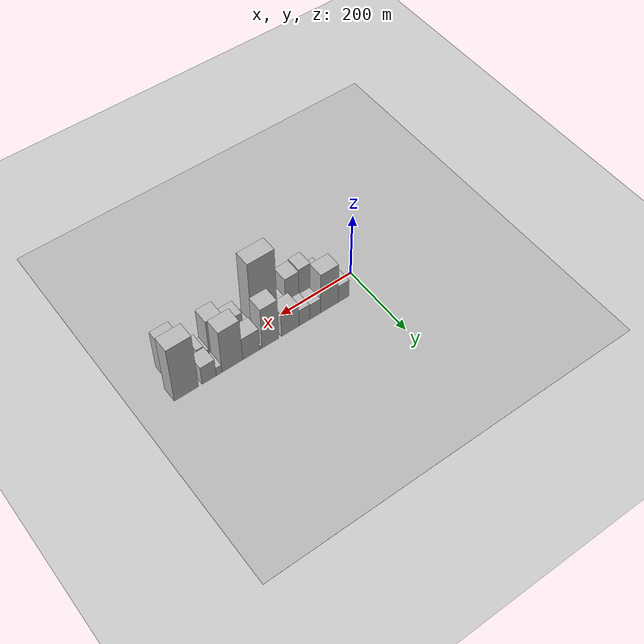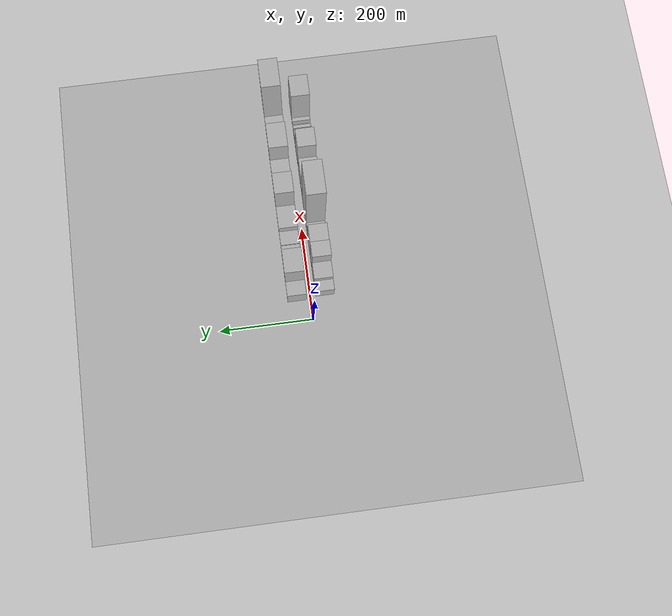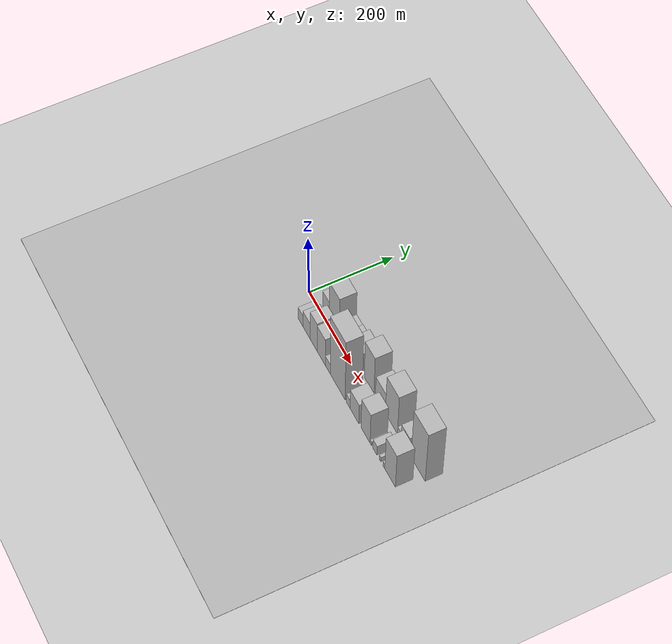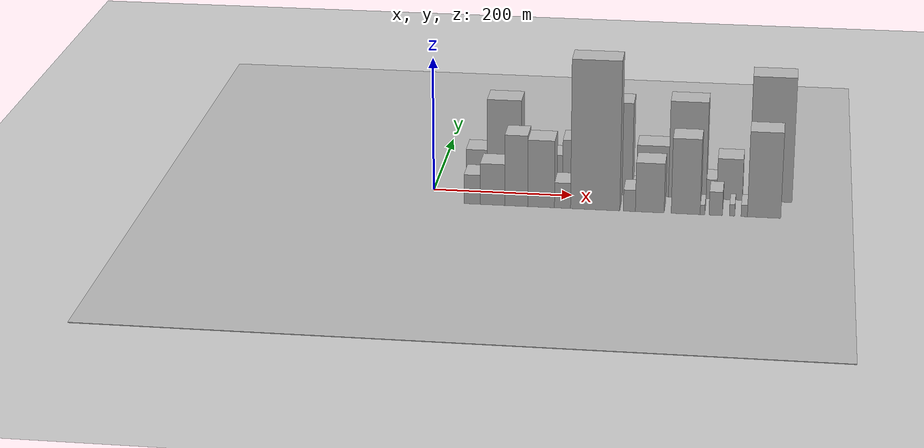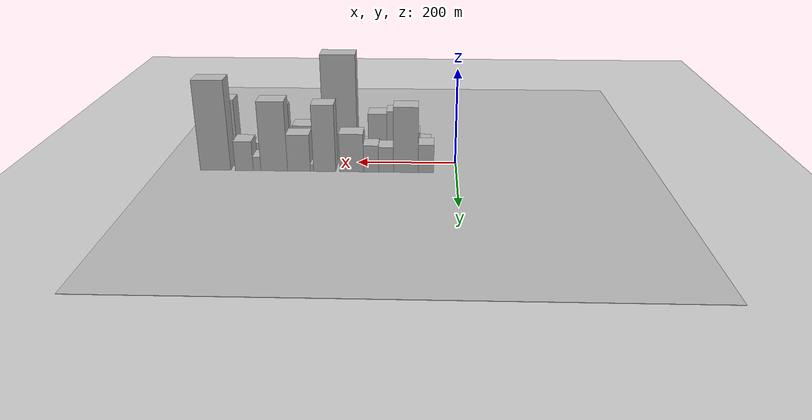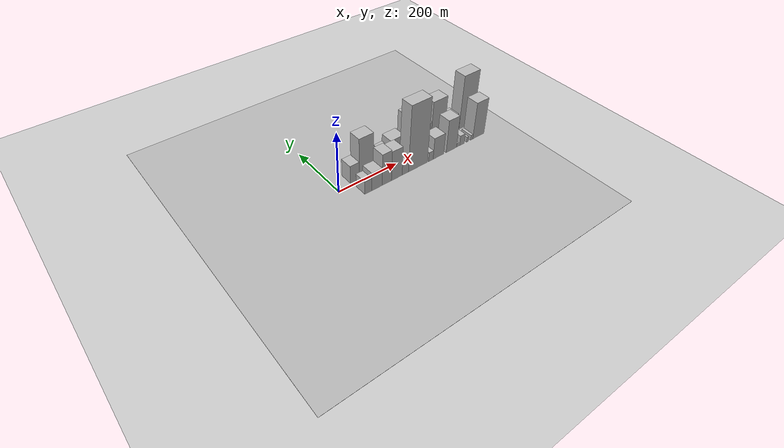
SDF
<?xml version="1.0" encoding="utf-8"?>

<sdf version="1.6">

   <world name="default">

      <gui fullscreen="0">

         <camera name="user_camera">

            <pose>-15 0 4.57585 0 0 0</pose>

            <view_controller>orbit</view_controller>

         </camera>

      </gui>

      <scene>

         <sky>

           <clouds>

             <speed>12</speed>

           </clouds>

         </sky>

         <ambient>0.4 0.4 0.4 1</ambient>

         <background>0.7 0.7 0.7 1</background>

         <shadows>1</shadows>

      </scene>

      <gravity>0 0 -9.8066</gravity>

      <magnetic_field>6e-06 2.3e-05 -4.2e-05</magnetic_field>

      <physics default="0" name="default_physics" type="ode">

         <ode>

            <solver>

               <type>quick</type>

               <iters>10</iters>

               <sor>1.0</sor>

               <use_dynamic_moi_rescaling>0</use_dynamic_moi_rescaling>

            </solver>

            <constraints>

               <cfm>0</cfm>

               <erp>0.2</erp>

               <contact_max_correcting_vel>100</contact_max_correcting_vel>

               <contact_surface_layer>0.001</contact_surface_layer>

            </constraints>

         </ode>

         <max_step_size>0.004</max_step_size>

         <real_time_factor>1</real_time_factor>

         <real_time_update_rate>250</real_time_update_rate>

      </physics>

      <light name="sun" type="directional">

         <cast_shadows>1</cast_shadows>

         <pose>0 0 10 0 0 0</pose>

         <diffuse>0.8 0.8 0.8 1</diffuse>

         <specular>0.2 0.2 0.2 1</specular>

         <attenuation>

            <range>1000</range>

            <constant>0.9</constant>

            <linear>0.01</linear>

            <quadratic>0.001</quadratic>

         </attenuation>

         <direction>-0.5 0.1 -0.9</direction>

      </light>

      <include>

         <name>ground_plane_1</name>

         <uri>model://HANNAS_ground_plane</uri>

         <pose>0 0 0  0 0 0</pose>

      </include>

      <include>

         <name>ground_plane_2</name>

         <uri>model://HANNAS_ground_plane</uri>

         <pose>100 0 0  0 0 0</pose>

      </include>

      <model name="building_1">

         <static>1</static>

         <pose frame="">60.4509 30.0000 0 0.000000 0.000000 1.570796</pose>

         <link name="link">

            <pose frame="">0 0 30.00 0 0 0</pose>

            <collision name="collision">

               <geometry>

                  <box>

                     <size>40.0000 30.9018 60.0000</size>

                  </box>

               </geometry>

               <max_contacts>10</max_contacts>

               <surface>

                  <contact>

                     <ode/>

                  </contact>

                  <bounce/>

                  <friction>

                     <torsional>

                        <ode/>

                     </torsional>

                     <ode/>

                  </friction>

               </surface>

            </collision>

            <visual name="visual">

               <cast_shadows>0</cast_shadows>

               <geometry>

                  <box>

                     <size>40.0000 30.9018 60.0000</size>

                  </box>

               </geometry>

               <material>

                  <script>

                     <uri>model://HANNAS_wall/materials/scripts</uri>

                     <uri>model://HANNAS_wall/materials/textures</uri>

                     <name>vrc/HANNAS_wall</name>

                  </script>

               </material>

            </visual>

            <self_collide>0</self_collide>

            <enable_wind>0</enable_wind>

            <kinematic>0</kinematic>

         </link>

      </model>

      <model name="building_2">

         <static>1</static>

         <pose frame="">100.6354 30.0000 0 0.000000 0.000000 1.570796</pose>

         <link name="link">

            <pose frame="">0 0 69.00 0 0 0</pose>

            <collision name="collision">

               <geometry>

                  <box>

                     <size>40.0000 49.4672 138.0000</size>

                  </box>

               </geometry>

               <max_contacts>10</max_contacts>

               <surface>

                  <contact>

                     <ode/>

                  </contact>

                  <bounce/>

                  <friction>

                     <torsional>

                        <ode/>

                     </torsional>

                     <ode/>

                  </friction>

               </surface>

            </collision>

            <visual name="visual">

               <cast_shadows>0</cast_shadows>

               <geometry>

                  <box>

                     <size>40.0000 49.4672 138.0000</size>

                  </box>

               </geometry>

               <material>

                  <script>

                     <uri>model://HANNAS_wall/materials/scripts</uri>

                     <uri>model://HANNAS_wall/materials/textures</uri>

                     <name>vrc/HANNAS_wall</name>

                  </script>

               </material>

            </visual>

            <self_collide>0</self_collide>

            <enable_wind>0</enable_wind>

            <kinematic>0</kinematic>

         </link>

      </model>

      <model name="building_3">

         <static>1</static>

         <pose frame="">140.2721 30.0000 0 0.000000 0.000000 1.570796</pose>

         <link name="link">

            <pose frame="">0 0 27.00 0 0 0</pose>

            <collision name="collision">

               <geometry>

                  <box>

                     <size>40.0000 29.8062 54.0000</size>

                  </box>

               </geometry>

               <max_contacts>10</max_contacts>

               <surface>

                  <contact>

                     <ode/>

                  </contact>

                  <bounce/>

                  <friction>

                     <torsional>

                        <ode/>

                     </torsional>

                     <ode/>

                  </friction>

               </surface>

            </collision>

            <visual name="visual">

               <cast_shadows>0</cast_shadows>

               <geometry>

                  <box>

                     <size>40.0000 29.8062 54.0000</size>

                  </box>

               </geometry>

               <material>

                  <script>

                     <uri>model://HANNAS_wall/materials/scripts</uri>

                     <uri>model://HANNAS_wall/materials/textures</uri>

                     <name>vrc/HANNAS_wall</name>

                  </script>

               </material>

            </visual>

            <self_collide>0</self_collide>

            <enable_wind>0</enable_wind>

            <kinematic>0</kinematic>

         </link>

      </model>

      <model name="building_4">

         <static>1</static>

         <pose frame="">170.2187 30.0000 0 0.000000 0.000000 1.570796</pose>

         <link name="link">

            <pose frame="">0 0 28.50 0 0 0</pose>

            <collision name="collision">

               <geometry>

                  <box>

                     <size>40.0000 30.0870 57.0000</size>

                  </box>

               </geometry>

               <max_contacts>10</max_contacts>

               <surface>

                  <contact>

                     <ode/>

                  </contact>

                  <bounce/>

                  <friction>

                     <torsional>

                        <ode/>

                     </torsional>

                     <ode/>

                  </friction>

               </surface>

            </collision>

            <visual name="visual">

               <cast_shadows>0</cast_shadows>

               <geometry>

                  <box>

                     <size>40.0000 30.0870 57.0000</size>

                  </box>

               </geometry>

               <material>

                  <script>

                     <uri>model://HANNAS_wall/materials/scripts</uri>

                     <uri>model://HANNAS_wall/materials/textures</uri>

                     <name>vrc/HANNAS_wall</name>

                  </script>

               </material>

            </visual>

            <self_collide>0</self_collide>

            <enable_wind>0</enable_wind>

            <kinematic>0</kinematic>

         </link>

      </model>

      <model name="building_5">

         <static>1</static>

         <pose frame="">209.2248 30.0000 0 0.000000 0.000000 1.570796</pose>

         <link name="link">

            <pose frame="">0 0 40.50 0 0 0</pose>

            <collision name="collision">

               <geometry>

                  <box>

                     <size>40.0000 47.9252 81.0000</size>

                  </box>

               </geometry>

               <max_contacts>10</max_contacts>

               <surface>

                  <contact>

                     <ode/>

                  </contact>

                  <bounce/>

                  <friction>

                     <torsional>

                        <ode/>

                     </torsional>

                     <ode/>

                  </friction>

               </surface>

            </collision>

            <visual name="visual">

               <cast_shadows>0</cast_shadows>

               <geometry>

                  <box>

                     <size>40.0000 47.9252 81.0000</size>

                  </box>

               </geometry>

               <material>

                  <script>

                     <uri>model://HANNAS_wall/materials/scripts</uri>

                     <uri>model://HANNAS_wall/materials/textures</uri>

                     <name>vrc/HANNAS_wall</name>

                  </script>

               </material>

            </visual>

            <self_collide>0</self_collide>

            <enable_wind>0</enable_wind>

            <kinematic>0</kinematic>

         </link>

      </model>

      <model name="building_6">

         <static>1</static>

         <pose frame="">263.5453 30.0000 0 0.000000 0.000000 1.570796</pose>

         <link name="link">

            <pose frame="">0 0 70.50 0 0 0</pose>

            <collision name="collision">

               <geometry>

                  <box>

                     <size>40.0000 44.7156 141.0000</size>

                  </box>

               </geometry>

               <max_contacts>10</max_contacts>

               <surface>

                  <contact>

                     <ode/>

                  </contact>

                  <bounce/>

                  <friction>

                     <torsional>

                        <ode/>

                     </torsional>

                     <ode/>

                  </friction>

               </surface>

            </collision>

            <visual name="visual">

               <cast_shadows>0</cast_shadows>

               <geometry>

                  <box>

                     <size>40.0000 44.7156 141.0000</size>

                  </box>

               </geometry>

               <material>

                  <script>

                     <uri>model://HANNAS_wall/materials/scripts</uri>

                     <uri>model://HANNAS_wall/materials/textures</uri>

                     <name>vrc/HANNAS_wall</name>

                  </script>

               </material>

            </visual>

            <self_collide>0</self_collide>

            <enable_wind>0</enable_wind>

            <kinematic>0</kinematic>

         </link>

      </model>

      <model name="building_7">

         <static>1</static>

         <pose frame="">289.0126 30.0000 0 0.000000 0.000000 1.570796</pose>

         <link name="link">

            <pose frame="">0 0 7.50 0 0 0</pose>

            <collision name="collision">

               <geometry>

                  <box>

                     <size>40.0000 6.2190 15.0000</size>

                  </box>

               </geometry>

               <max_contacts>10</max_contacts>

               <surface>

                  <contact>

                     <ode/>

                  </contact>

                  <bounce/>

                  <friction>

                     <torsional>

                        <ode/>

                     </torsional>

                     <ode/>

                  </friction>

               </surface>

            </collision>

            <visual name="visual">

               <cast_shadows>0</cast_shadows>

               <geometry>

                  <box>

                     <size>40.0000 6.2190 15.0000</size>

                  </box>

               </geometry>

               <material>

                  <script>

                     <uri>model://HANNAS_wall/materials/scripts</uri>

                     <uri>model://HANNAS_wall/materials/textures</uri>

                     <name>vrc/HANNAS_wall</name>

                  </script>

               </material>

            </visual>

            <self_collide>0</self_collide>

            <enable_wind>0</enable_wind>

            <kinematic>0</kinematic>

         </link>

      </model>

      <model name="building_8">

         <static>1</static>

         <pose frame="">315.0949 30.0000 0 0.000000 0.000000 1.570796</pose>

         <link name="link">

            <pose frame="">0 0 39.00 0 0 0</pose>

            <collision name="collision">

               <geometry>

                  <box>

                     <size>40.0000 45.9457 78.0000</size>

                  </box>

               </geometry>

               <max_contacts>10</max_contacts>

               <surface>

                  <contact>

                     <ode/>

                  </contact>

                  <bounce/>

                  <friction>

                     <torsional>

                        <ode/>

                     </torsional>

                     <ode/>

                  </friction>

               </surface>

            </collision>

            <visual name="visual">

               <cast_shadows>0</cast_shadows>

               <geometry>

                  <box>

                     <size>40.0000 45.9457 78.0000</size>

                  </box>

               </geometry>

               <material>

                  <script>

                     <uri>model://HANNAS_wall/materials/scripts</uri>

                     <uri>model://HANNAS_wall/materials/textures</uri>

                     <name>vrc/HANNAS_wall</name>

                  </script>

               </material>

            </visual>

            <self_collide>0</self_collide>

            <enable_wind>0</enable_wind>

            <kinematic>0</kinematic>

         </link>

      </model>

      <model name="building_9">

         <static>1</static>

         <pose frame="">365.0862 30.0000 0 0.000000 0.000000 1.570796</pose>

         <link name="link">

            <pose frame="">0 0 73.50 0 0 0</pose>

            <collision name="collision">

               <geometry>

                  <box>

                     <size>40.0000 54.0369 147.0000</size>

                  </box>

               </geometry>

               <max_contacts>10</max_contacts>

               <surface>

                  <contact>

                     <ode/>

                  </contact>

                  <bounce/>

                  <friction>

                     <torsional>

                        <ode/>

                     </torsional>

                     <ode/>

                  </friction>

               </surface>

            </collision>

            <visual name="visual">

               <cast_shadows>0</cast_shadows>

               <geometry>

                  <box>

                     <size>40.0000 54.0369 147.0000</size>

                  </box>

               </geometry>

               <material>

                  <script>

                     <uri>model://HANNAS_wall/materials/scripts</uri>

                     <uri>model://HANNAS_wall/materials/textures</uri>

                     <name>vrc/HANNAS_wall</name>

                  </script>

               </material>

            </visual>

            <self_collide>0</self_collide>

            <enable_wind>0</enable_wind>

            <kinematic>0</kinematic>

         </link>

      </model>

      <model name="building_10">

         <static>1</static>

         <pose frame="">399.7373 30.0000 0 0.000000 0.000000 1.570796</pose>

         <link name="link">

            <pose frame="">0 0 15.00 0 0 0</pose>

            <collision name="collision">

               <geometry>

                  <box>

                     <size>40.0000 15.2653 30.0000</size>

                  </box>

               </geometry>

               <max_contacts>10</max_contacts>

               <surface>

                  <contact>

                     <ode/>

                  </contact>

                  <bounce/>

                  <friction>

                     <torsional>

                        <ode/>

                     </torsional>

                     <ode/>

                  </friction>

               </surface>

            </collision>

            <visual name="visual">

               <cast_shadows>0</cast_shadows>

               <geometry>

                  <box>

                     <size>40.0000 15.2653 30.0000</size>

                  </box>

               </geometry>

               <material>

                  <script>

                     <uri>model://HANNAS_wall/materials/scripts</uri>

                     <uri>model://HANNAS_wall/materials/textures</uri>

                     <name>vrc/HANNAS_wall</name>

                  </script>

               </material>

            </visual>

            <self_collide>0</self_collide>

            <enable_wind>0</enable_wind>

            <kinematic>0</kinematic>

         </link>

      </model>

      <model name="building_11">

         <static>1</static>

         <pose frame="">425.6151 30.0000 0 0.000000 0.000000 1.570796</pose>

         <link name="link">

            <pose frame="">0 0 31.50 0 0 0</pose>

            <collision name="collision">

               <geometry>

                  <box>

                     <size>40.0000 36.4903 63.0000</size>

                  </box>

               </geometry>

               <max_contacts>10</max_contacts>

               <surface>

                  <contact>

                     <ode/>

                  </contact>

                  <bounce/>

                  <friction>

                     <torsional>

                        <ode/>

                     </torsional>

                     <ode/>

                  </friction>

               </surface>

            </collision>

            <visual name="visual">

               <cast_shadows>0</cast_shadows>

               <geometry>

                  <box>

                     <size>40.0000 36.4903 63.0000</size>

                  </box>

               </geometry>

               <material>

                  <script>

                     <uri>model://HANNAS_wall/materials/scripts</uri>

                     <uri>model://HANNAS_wall/materials/textures</uri>

                     <name>vrc/HANNAS_wall</name>

                  </script>

               </material>

            </visual>

            <self_collide>0</self_collide>

            <enable_wind>0</enable_wind>

            <kinematic>0</kinematic>

         </link>

      </model>

      <model name="building_12">

         <static>1</static>

         <pose frame="">483.7335 30.0000 0 0.000000 0.000000 1.570796</pose>

         <link name="link">

            <pose frame="">0 0 94.50 0 0 0</pose>

            <collision name="collision">

               <geometry>

                  <box>

                     <size>40.0000 61.7464 189.0000</size>

                  </box>

               </geometry>

               <max_contacts>10</max_contacts>

               <surface>

                  <contact>

                     <ode/>

                  </contact>

                  <bounce/>

                  <friction>

                     <torsional>

                        <ode/>

                     </torsional>

                     <ode/>

                  </friction>

               </surface>

            </collision>

            <visual name="visual">

               <cast_shadows>0</cast_shadows>

               <geometry>

                  <box>

                     <size>40.0000 61.7464 189.0000</size>

                  </box>

               </geometry>

               <material>

                  <script>

                     <uri>model://HANNAS_wall/materials/scripts</uri>

                     <uri>model://HANNAS_wall/materials/textures</uri>

                     <name>vrc/HANNAS_wall</name>

                  </script>

               </material>

            </visual>

            <self_collide>0</self_collide>

            <enable_wind>0</enable_wind>

            <kinematic>0</kinematic>

         </link>

      </model>

      <model name="building_13">

         <static>1</static>

         <pose frame="">61.6590 -30.0000 0 0.000000 0.000000 1.570796</pose>

         <link name="link">

            <pose frame="">0 0 22.50 0 0 0</pose>

            <collision name="collision">

               <geometry>

                  <box>

                     <size>40.0000 23.3180 45.0000</size>

                  </box>

               </geometry>

               <max_contacts>10</max_contacts>

               <surface>

                  <contact>

                     <ode/>

                  </contact>

                  <bounce/>

                  <friction>

                     <torsional>

                        <ode/>

                     </torsional>

                     <ode/>

                  </friction>

               </surface>

            </collision>

            <visual name="visual">

               <cast_shadows>0</cast_shadows>

               <geometry>

                  <box>

                     <size>40.0000 23.3180 45.0000</size>

                  </box>

               </geometry>

               <material>

                  <script>

                     <uri>model://HANNAS_wall/materials/scripts</uri>

                     <uri>model://HANNAS_wall/materials/textures</uri>

                     <name>vrc/HANNAS_wall</name>

                  </script>

               </material>

            </visual>

            <self_collide>0</self_collide>

            <enable_wind>0</enable_wind>

            <kinematic>0</kinematic>

         </link>

      </model>

      <model name="building_14">

         <static>1</static>

         <pose frame="">90.9858 -30.0000 0 0.000000 0.000000 1.570796</pose>

         <link name="link">

            <pose frame="">0 0 31.50 0 0 0</pose>

            <collision name="collision">

               <geometry>

                  <box>

                     <size>40.0000 35.3356 63.0000</size>

                  </box>

               </geometry>

               <max_contacts>10</max_contacts>

               <surface>

                  <contact>

                     <ode/>

                  </contact>

                  <bounce/>

                  <friction>

                     <torsional>

                        <ode/>

                     </torsional>

                     <ode/>

                  </friction>

               </surface>

            </collision>

            <visual name="visual">

               <cast_shadows>0</cast_shadows>

               <geometry>

                  <box>

                     <size>40.0000 35.3356 63.0000</size>

                  </box>

               </geometry>

               <material>

                  <script>

                     <uri>model://HANNAS_wall/materials/scripts</uri>

                     <uri>model://HANNAS_wall/materials/textures</uri>

                     <name>vrc/HANNAS_wall</name>

                  </script>

               </material>

            </visual>

            <self_collide>0</self_collide>

            <enable_wind>0</enable_wind>

            <kinematic>0</kinematic>

         </link>

      </model>

      <model name="building_15">

         <static>1</static>

         <pose frame="">125.0163 -30.0000 0 0.000000 0.000000 1.570796</pose>

         <link name="link">

            <pose frame="">0 0 54.00 0 0 0</pose>

            <collision name="collision">

               <geometry>

                  <box>

                     <size>40.0000 32.7255 108.0000</size>

                  </box>

               </geometry>

               <max_contacts>10</max_contacts>

               <surface>

                  <contact>

                     <ode/>

                  </contact>

                  <bounce/>

                  <friction>

                     <torsional>

                        <ode/>

                     </torsional>

                     <ode/>

                  </friction>

               </surface>

            </collision>

            <visual name="visual">

               <cast_shadows>0</cast_shadows>

               <geometry>

                  <box>

                     <size>40.0000 32.7255 108.0000</size>

                  </box>

               </geometry>

               <material>

                  <script>

                     <uri>model://HANNAS_wall/materials/scripts</uri>

                     <uri>model://HANNAS_wall/materials/textures</uri>

                     <name>vrc/HANNAS_wall</name>

                  </script>

               </material>

            </visual>

            <self_collide>0</self_collide>

            <enable_wind>0</enable_wind>

            <kinematic>0</kinematic>

         </link>

      </model>

      <model name="building_16">

         <static>1</static>

         <pose frame="">160.4544 -30.0000 0 0.000000 0.000000 1.570796</pose>

         <link name="link">

            <pose frame="">0 0 51.00 0 0 0</pose>

            <collision name="collision">

               <geometry>

                  <box>

                     <size>40.0000 38.1506 102.0000</size>

                  </box>

               </geometry>

               <max_contacts>10</max_contacts>

               <surface>

                  <contact>

                     <ode/>

                  </contact>

                  <bounce/>

                  <friction>

                     <torsional>

                        <ode/>

                     </torsional>

                     <ode/>

                  </friction>

               </surface>

            </collision>

            <visual name="visual">

               <cast_shadows>0</cast_shadows>

               <geometry>

                  <box>

                     <size>40.0000 38.1506 102.0000</size>

                  </box>

               </geometry>

               <material>

                  <script>

                     <uri>model://HANNAS_wall/materials/scripts</uri>

                     <uri>model://HANNAS_wall/materials/textures</uri>

                     <name>vrc/HANNAS_wall</name>

                  </script>

               </material>

            </visual>

            <self_collide>0</self_collide>

            <enable_wind>0</enable_wind>

            <kinematic>0</kinematic>

         </link>

      </model>

      <model name="building_17">

         <static>1</static>

         <pose frame="">191.0245 -30.0000 0 0.000000 0.000000 1.570796</pose>

         <link name="link">

            <pose frame="">0 0 19.50 0 0 0</pose>

            <collision name="collision">

               <geometry>

                  <box>

                     <size>40.0000 22.9897 39.0000</size>

                  </box>

               </geometry>

               <max_contacts>10</max_contacts>

               <surface>

                  <contact>

                     <ode/>

                  </contact>

                  <bounce/>

                  <friction>

                     <torsional>

                        <ode/>

                     </torsional>

                     <ode/>

                  </friction>

               </surface>

            </collision>

            <visual name="visual">

               <cast_shadows>0</cast_shadows>

               <geometry>

                  <box>

                     <size>40.0000 22.9897 39.0000</size>

                  </box>

               </geometry>

               <material>

                  <script>

                     <uri>model://HANNAS_wall/materials/scripts</uri>

                     <uri>model://HANNAS_wall/materials/textures</uri>

                     <name>vrc/HANNAS_wall</name>

                  </script>

               </material>

            </visual>

            <self_collide>0</self_collide>

            <enable_wind>0</enable_wind>

            <kinematic>0</kinematic>

         </link>

      </model>

      <model name="building_18">

         <static>1</static>

         <pose frame="">237.5832 -30.0000 0 0.000000 0.000000 1.570796</pose>

         <link name="link">

            <pose frame="">0 0 112.50 0 0 0</pose>

            <collision name="collision">

               <geometry>

                  <box>

                     <size>40.0000 70.1277 225.0000</size>

                  </box>

               </geometry>

               <max_contacts>10</max_contacts>

               <surface>

                  <contact>

                     <ode/>

                  </contact>

                  <bounce/>

                  <friction>

                     <torsional>

                        <ode/>

                     </torsional>

                     <ode/>

                  </friction>

               </surface>

            </collision>

            <visual name="visual">

               <cast_shadows>0</cast_shadows>

               <geometry>

                  <box>

                     <size>40.0000 70.1277 225.0000</size>

                  </box>

               </geometry>

               <material>

                  <script>

                     <uri>model://HANNAS_wall/materials/scripts</uri>

                     <uri>model://HANNAS_wall/materials/textures</uri>

                     <name>vrc/HANNAS_wall</name>

                  </script>

               </material>

            </visual>

            <self_collide>0</self_collide>

            <enable_wind>0</enable_wind>

            <kinematic>0</kinematic>

         </link>

      </model>

      <model name="building_19">

         <static>1</static>

         <pose frame="">286.1950 -30.0000 0 0.000000 0.000000 1.570796</pose>

         <link name="link">

            <pose frame="">0 0 16.50 0 0 0</pose>

            <collision name="collision">

               <geometry>

                  <box>

                     <size>40.0000 17.0960 33.0000</size>

                  </box>

               </geometry>

               <max_contacts>10</max_contacts>

               <surface>

                  <contact>

                     <ode/>

                  </contact>

                  <bounce/>

                  <friction>

                     <torsional>

                        <ode/>

                     </torsional>

                     <ode/>

                  </friction>

               </surface>

            </collision>

            <visual name="visual">

               <cast_shadows>0</cast_shadows>

               <geometry>

                  <box>

                     <size>40.0000 17.0960 33.0000</size>

                  </box>

               </geometry>

               <material>

                  <script>

                     <uri>model://HANNAS_wall/materials/scripts</uri>

                     <uri>model://HANNAS_wall/materials/textures</uri>

                     <name>vrc/HANNAS_wall</name>

                  </script>

               </material>

            </visual>

            <self_collide>0</self_collide>

            <enable_wind>0</enable_wind>

            <kinematic>0</kinematic>

         </link>

      </model>

      <model name="building_20">

         <static>1</static>

         <pose frame="">315.1002 -30.0000 0 0.000000 0.000000 1.570796</pose>

         <link name="link">

            <pose frame="">0 0 37.50 0 0 0</pose>

            <collision name="collision">

               <geometry>

                  <box>

                     <size>40.0000 40.7143 75.0000</size>

                  </box>

               </geometry>

               <max_contacts>10</max_contacts>

               <surface>

                  <contact>

                     <ode/>

                  </contact>

                  <bounce/>

                  <friction>

                     <torsional>

                        <ode/>

                     </torsional>

                     <ode/>

                  </friction>

               </surface>

            </collision>

            <visual name="visual">

               <cast_shadows>0</cast_shadows>

               <geometry>

                  <box>

                     <size>40.0000 40.7143 75.0000</size>

                  </box>

               </geometry>

               <material>

                  <script>

                     <uri>model://HANNAS_wall/materials/scripts</uri>

                     <uri>model://HANNAS_wall/materials/textures</uri>

                     <name>vrc/HANNAS_wall</name>

                  </script>

               </material>

            </visual>

            <self_collide>0</self_collide>

            <enable_wind>0</enable_wind>

            <kinematic>0</kinematic>

         </link>

      </model>

      <model name="building_21">

         <static>1</static>

         <pose frame="">365.8696 -30.0000 0 0.000000 0.000000 1.570796</pose>

         <link name="link">

            <pose frame="">0 0 57.00 0 0 0</pose>

            <collision name="collision">

               <geometry>

                  <box>

                     <size>40.0000 40.8246 114.0000</size>

                  </box>

               </geometry>

               <max_contacts>10</max_contacts>

               <surface>

                  <contact>

                     <ode/>

                  </contact>

                  <bounce/>

                  <friction>

                     <torsional>

                        <ode/>

                     </torsional>

                     <ode/>

                  </friction>

               </surface>

            </collision>

            <visual name="visual">

               <cast_shadows>0</cast_shadows>

               <geometry>

                  <box>

                     <size>40.0000 40.8246 114.0000</size>

                  </box>

               </geometry>

               <material>

                  <script>

                     <uri>model://HANNAS_wall/materials/scripts</uri>

                     <uri>model://HANNAS_wall/materials/textures</uri>

                     <name>vrc/HANNAS_wall</name>

                  </script>

               </material>

            </visual>

            <self_collide>0</self_collide>

            <enable_wind>0</enable_wind>

            <kinematic>0</kinematic>

         </link>

      </model>

      <model name="building_22">

         <static>1</static>

         <pose frame="">389.5292 -30.0000 0 0.000000 0.000000 1.570796</pose>

         <link name="link">

            <pose frame="">0 0 7.50 0 0 0</pose>

            <collision name="collision">

               <geometry>

                  <box>

                     <size>40.0000 6.4946 15.0000</size>

                  </box>

               </geometry>

               <max_contacts>10</max_contacts>

               <surface>

                  <contact>

                     <ode/>

                  </contact>

                  <bounce/>

                  <friction>

                     <torsional>

                        <ode/>

                     </torsional>

                     <ode/>

                  </friction>

               </surface>

            </collision>

            <visual name="visual">

               <cast_shadows>0</cast_shadows>

               <geometry>

                  <box>

                     <size>40.0000 6.4946 15.0000</size>

                  </box>

               </geometry>

               <material>

                  <script>

                     <uri>model://HANNAS_wall/materials/scripts</uri>

                     <uri>model://HANNAS_wall/materials/textures</uri>

                     <name>vrc/HANNAS_wall</name>

                  </script>

               </material>

            </visual>

            <self_collide>0</self_collide>

            <enable_wind>0</enable_wind>

            <kinematic>0</kinematic>

         </link>

      </model>

      <model name="building_23">

         <static>1</static>

         <pose frame="">408.1531 -30.0000 0 0.000000 0.000000 1.570796</pose>

         <link name="link">

            <pose frame="">0 0 18.00 0 0 0</pose>

            <collision name="collision">

               <geometry>

                  <box>

                     <size>40.0000 18.7534 36.0000</size>

                  </box>

               </geometry>

               <max_contacts>10</max_contacts>

               <surface>

                  <contact>

                     <ode/>

                  </contact>

                  <bounce/>

                  <friction>

                     <torsional>

                        <ode/>

                     </torsional>

                     <ode/>

                  </friction>

               </surface>

            </collision>

            <visual name="visual">

               <cast_shadows>0</cast_shadows>

               <geometry>

                  <box>

                     <size>40.0000 18.7534 36.0000</size>

                  </box>

               </geometry>

               <material>

                  <script>

                     <uri>model://HANNAS_wall/materials/scripts</uri>

                     <uri>model://HANNAS_wall/materials/textures</uri>

                     <name>vrc/HANNAS_wall</name>

                  </script>

               </material>

            </visual>

            <self_collide>0</self_collide>

            <enable_wind>0</enable_wind>

            <kinematic>0</kinematic>

         </link>

      </model>

      <model name="building_24">

         <static>1</static>

         <pose frame="">431.2003 -30.0000 0 0.000000 0.000000 1.570796</pose>

         <link name="link">

            <pose frame="">0 0 9.00 0 0 0</pose>

            <collision name="collision">

               <geometry>

                  <box>

                     <size>40.0000 7.3409 18.0000</size>

                  </box>

               </geometry>

               <max_contacts>10</max_contacts>

               <surface>

                  <contact>

                     <ode/>

                  </contact>

                  <bounce/>

                  <friction>

                     <torsional>

                        <ode/>

                     </torsional>

                     <ode/>

                  </friction>

               </surface>

            </collision>

            <visual name="visual">

               <cast_shadows>0</cast_shadows>

               <geometry>

                  <box>

                     <size>40.0000 7.3409 18.0000</size>

                  </box>

               </geometry>

               <material>

                  <script>

                     <uri>model://HANNAS_wall/materials/scripts</uri>

                     <uri>model://HANNAS_wall/materials/textures</uri>

                     <name>vrc/HANNAS_wall</name>

                  </script>

               </material>

            </visual>

            <self_collide>0</self_collide>

            <enable_wind>0</enable_wind>

            <kinematic>0</kinematic>

         </link>

      </model>

      <model name="building_25">

         <static>1</static>

         <pose frame="">448.3053 -30.0000 0 0.000000 0.000000 1.570796</pose>

         <link name="link">

            <pose frame="">0 0 9.00 0 0 0</pose>

            <collision name="collision">

               <geometry>

                  <box>

                     <size>40.0000 8.8690 18.0000</size>

                  </box>

               </geometry>

               <max_contacts>10</max_contacts>

               <surface>

                  <contact>

                     <ode/>

                  </contact>

                  <bounce/>

                  <friction>

                     <torsional>

                        <ode/>

                     </torsional>

                     <ode/>

                  </friction>

               </surface>

            </collision>

            <visual name="visual">

               <cast_shadows>0</cast_shadows>

               <geometry>

                  <box>

                     <size>40.0000 8.8690 18.0000</size>

                  </box>

               </geometry>

               <material>

                  <script>

                     <uri>model://HANNAS_wall/materials/scripts</uri>

                     <uri>model://HANNAS_wall/materials/textures</uri>

                     <name>vrc/HANNAS_wall</name>

                  </script>

               </material>

            </visual>

            <self_collide>0</self_collide>

            <enable_wind>0</enable_wind>

            <kinematic>0</kinematic>

         </link>

      </model>

      <model name="building_26">

         <static>1</static>

         <pose frame="">476.1390 -30.0000 0 0.000000 0.000000 1.570796</pose>

         <link name="link">

            <pose frame="">0 0 64.50 0 0 0</pose>

            <collision name="collision">

               <geometry>

                  <box>

                     <size>40.0000 46.7985 129.0000</size>

                  </box>

               </geometry>

               <max_contacts>10</max_contacts>

               <surface>

                  <contact>

                     <ode/>

                  </contact>

                  <bounce/>

                  <friction>

                     <torsional>

                        <ode/>

                     </torsional>

                     <ode/>

                  </friction>

               </surface>

            </collision>

            <visual name="visual">

               <cast_shadows>0</cast_shadows>

               <geometry>

                  <box>

                     <size>40.0000 46.7985 129.0000</size>

                  </box>

               </geometry>

               <material>

                  <script>

                     <uri>model://HANNAS_wall/materials/scripts</uri>

                     <uri>model://HANNAS_wall/materials/textures</uri>

                     <name>vrc/HANNAS_wall</name>

                  </script>

               </material>

            </visual>

            <self_collide>0</self_collide>

            <enable_wind>0</enable_wind>

            <kinematic>0</kinematic>

         </link>

      </model>

   </world>

</sdf>

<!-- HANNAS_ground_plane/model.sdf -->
<sdf version="1.4">
<model name="HANNAS_ground_plane">
  <static>true</static>
    <link name="link">
      <collision name="collision">
        <geometry>
          <plane>
            <normal>0 0 1</normal>
            <size>1000 1000</size>
          </plane>
        </geometry>
        <surface>
          <friction>
            <ode>
              <mu>100</mu>
              <mu2>50</mu2>
            </ode>
          </friction>
        </surface>
      </collision>
      <visual name="visual">
        <cast_shadows>false</cast_shadows>
        <geometry>
          <plane>
            <normal>0 0 1</normal>
            <size>1000 1000</size>
          </plane>
        </geometry>
        <material>
          <script>
            <uri>model://HANNAS_ground_plane/materials/scripts/HANNAS_ground_plane.material</uri>
	    <uri>model://HANNAS_ground_plane/materials/textures</uri>
            <name>HANNASGroundPlane/Image</name>
          </script>
        </material>
      </visual>
    </link>
  </model>
</sdf>
